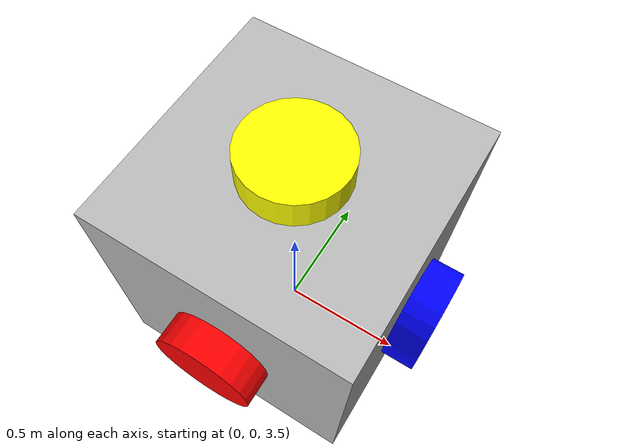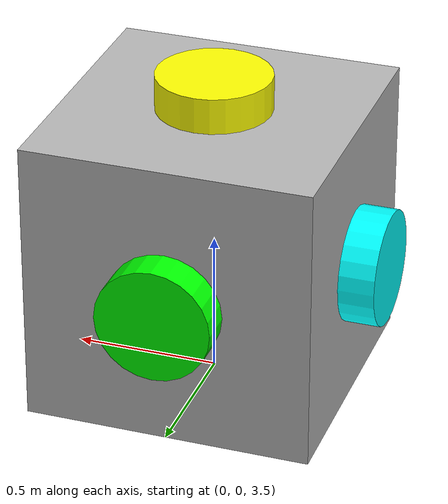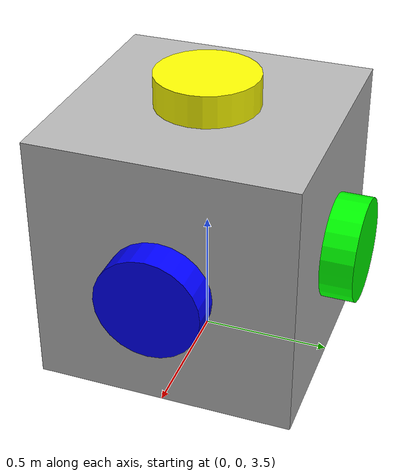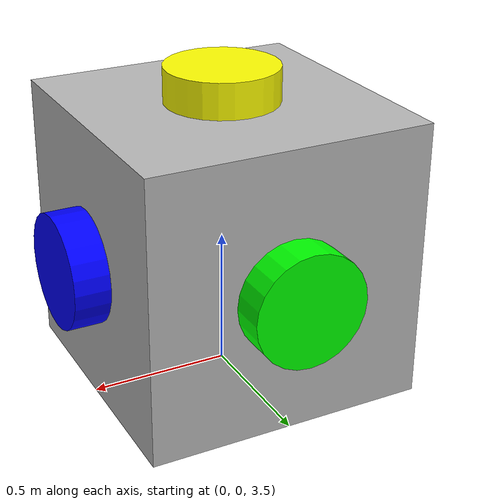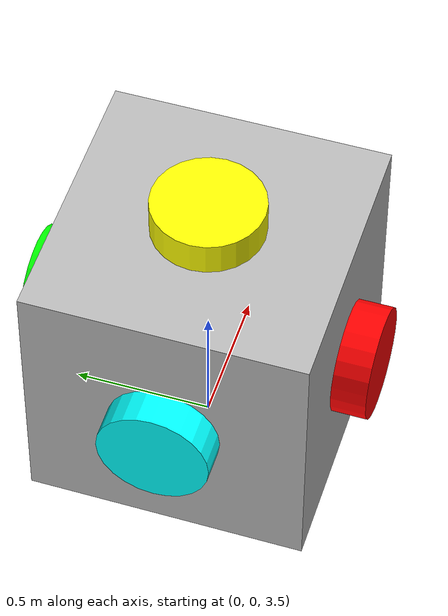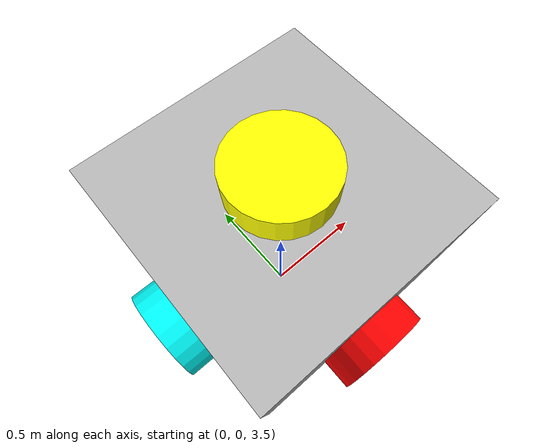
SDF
<sdf version="1.6">
  <world name="zero_g">
    <gravity>0 0 0</gravity>
    <physics name="1ms" type="ignored">
      <max_step_size>0.001</max_step_size>
      <real_time_factor>1.0</real_time_factor>
    </physics>
    <plugin
      filename="gz-sim-physics-system"
      name="gz::sim::systems::Physics">
    </plugin>
    <plugin
      filename="gz-sim-scene-broadcaster-system"
      name="gz::sim::systems::SceneBroadcaster">
    </plugin>
    <plugin
      filename="gz-sim-user-commands-system"
      name="gz::sim::systems::UserCommands">
    </plugin>
    <plugin
      filename="gz-sim-sensors-system"
      name="gz::sim::systems::Sensors">
      <render_engine>ogre2</render_engine>
    </plugin>
    <light type="directional" name="sun">
      <cast_shadows>true</cast_shadows>
      <pose>0 0 10 0 0 0</pose>
      <diffuse>0.8 0.8 0.8 1</diffuse>
      <specular>0.2 0.2 0.2 1</specular>
      <attenuation>
        <range>1000</range>
        <constant>0.9</constant>
        <linear>0.01</linear>
        <quadratic>0.001</quadratic>
      </attenuation>
      <direction>-0.5 0.1 -0.9</direction>
    </light>
  <include>
      <uri>../models/base1</uri>
      <pose>0 0 4 0 0 0</pose>
  </include>
  </world>
</sdf>

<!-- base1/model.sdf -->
<sdf version='1.9'>
<!--This has six thrusters and no gravity-->
  <model name='base'>
    <link name='base_link'>
      <gravity>false</gravity>
      <inertial>
        <pose>0 0 0 0 0 0</pose>
        <mass>60</mass>
        <inertia>
          <ixx>100</ixx>
          <ixy>0</ixy>
          <ixz>0</ixz>
          <iyy>100</iyy>
          <iyz>0</iyz>
          <izz>100</izz>
        </inertia>
      </inertial>
      <collision name='base_link_collision'>
        <pose>0 0 0 0 0 0</pose>
        <geometry>
          <box>
            <size>1 1 1</size>
          </box>
        </geometry>
        <surface>
          <contact>
            <ode>
              <kp>100000</kp>
              <kd>100000</kd>
            </ode>
          </contact>
          <friction>
            <ode>
              <mu>0</mu>
              <mu2>0</mu2>
              <fdir1>0 0 1</fdir1>
            </ode>
          </friction>
        </surface>
      </collision>
      <visual name='base_link_visual'>
        <pose>0 0 0 0 0 0</pose>
        <geometry>
            <box>
                <size>1 1 1</size>
            </box>
        </geometry>
      </visual>
    </link>

    <!-- 0 : Move Left -->
    <joint name='thruster_0_joint' type='fixed'>
      <pose relative_to='base_link'>0 -0.5 0 -1.5708 0 0</pose>
      <parent>base_link</parent>
      <child>thruster_0</child>
      <axis>
        <dynamics>
          <spring_reference>0</spring_reference>
          <spring_stiffness>0</spring_stiffness>
        </dynamics>
        <xyz>0 0 1</xyz>
        <limit>
          <lower>-1e+16</lower>
          <upper>1e+16</upper>
        </limit>
      </axis>
      <physics>
        <ode>
          <limit>
            <cfm>0</cfm>
            <erp>0.2</erp>
          </limit>
        </ode>
      </physics>
    </joint>
    <link name='thruster_0'>
      <gravity>false</gravity>
      <pose relative_to='thruster_0_joint'>0 0 0 0 -0 0</pose>
      <inertial>
        <pose>0 0 0 0 0 0</pose>
        <mass>0.001</mass>
        <inertia>
          <ixx>1e-05</ixx>
          <ixy>0</ixy>
          <ixz>0</ixz>
          <iyy>1e-05</iyy>
          <iyz>0</iyz>
          <izz>1e-05</izz>
        </inertia>
      </inertial>
      <visual name="thruster_0_visual">
        <pose> 0 0 0 0 0 0 </pose>
        <geometry>
            <cylinder>
                <length>0.25</length>
                <radius>0.2</radius>
            </cylinder>
        </geometry>
        <material>
            <ambient>0.1 0.1 0.1 1</ambient>
            <diffuse>1 0 0 1</diffuse>
            <specular>0 0 0 0</specular>
            <emissive>0 0 0 1</emissive>
        </material>
      </visual>
    </link>
    <plugin filename="gz-sim-spacecraft-thruster-model-system" name="gz::sim::systems::SpacecraftThrusterModel">
      <link_name>thruster_0</link_name>
      <actuator_number>0</actuator_number>
      <duty_cycle_frequency>10</duty_cycle_frequency>
      <max_thrust>1.4</max_thrust>
      <sub_topic>command/duty_cycle</sub_topic>
    </plugin>

    <!--1: Move Right -->
    <joint name='thruster_1_joint' type='fixed'>
      <pose relative_to='base_link'>0 0.5 0 1.5708 0 0</pose>
      <parent>base_link</parent>
      <child>thruster_1</child>
      <axis>
        <dynamics>
          <spring_reference>0</spring_reference>
          <spring_stiffness>0</spring_stiffness>
        </dynamics>
        <xyz>0 0 1</xyz>
        <limit>
          <lower>-1e+16</lower>
          <upper>1e+16</upper>
        </limit>
      </axis>
      <physics>
        <ode>
          <limit>
            <cfm>0</cfm>
            <erp>0.2</erp>
          </limit>
        </ode>
      </physics>
    </joint>
    <link name='thruster_1'>
      <gravity>false</gravity>
      <pose relative_to='thruster_1_joint'>0 0 0 0 -0 0</pose>
      <inertial>
        <pose>0 0 0 0 0 0</pose>
        <mass>0.001</mass>
        <inertia>
          <ixx>1e-05</ixx>
          <ixy>0</ixy>
          <ixz>0</ixz>
          <iyy>1e-05</iyy>
          <iyz>0</iyz>
          <izz>1e-05</izz>
        </inertia>
      </inertial>
      <visual name="thruster_1_visual">
        <pose> 0 0 0 0 0 0 </pose>
        <geometry>
            <cylinder>
                <length>0.25</length>
                <radius>0.2</radius>
            </cylinder>
        </geometry>
        <material>
            <ambient>0.1 0.1 0.1 1</ambient>
            <diffuse>0 1 0 1</diffuse>
            <specular>0 0 0 0</specular>
            <emissive>0 0 0 1</emissive>
        </material>
      </visual>
    </link>
    <plugin filename="gz-sim-spacecraft-thruster-model-system" name="gz::sim::systems::SpacecraftThrusterModel">
      <link_name>thruster_1</link_name>
      <actuator_number>1</actuator_number>
      <duty_cycle_frequency>10</duty_cycle_frequency>
      <max_thrust>1.4</max_thrust>
      <sub_topic>command/duty_cycle</sub_topic>
    </plugin>

    <!--2: Move Forward -->
    <joint name='thruster_2_joint' type='fixed'>
      <pose relative_to='base_link'>0.5 0 0 0 -1.5708 0</pose>
      <parent>base_link</parent>
      <child>thruster_2</child>
      <axis>
        <dynamics>
          <spring_reference>0</spring_reference>
          <spring_stiffness>0</spring_stiffness>
        </dynamics>
        <xyz>0 0 1</xyz>
        <limit>
          <lower>-1e+16</lower>
          <upper>1e+16</upper>
        </limit>
      </axis>
      <physics>
        <ode>
          <limit>
            <cfm>0</cfm>
            <erp>0.2</erp>
          </limit>
        </ode>
      </physics>
    </joint>
    <link name='thruster_2'>
      <gravity>false</gravity>
      <pose relative_to='thruster_2_joint'>0 0 0 0 -0 0</pose>
      <inertial>
        <pose>0 0 0 0 0 0</pose>
        <mass>0.001</mass>
        <inertia>
          <ixx>1e-05</ixx>
          <ixy>0</ixy>
          <ixz>0</ixz>
          <iyy>1e-05</iyy>
          <iyz>0</iyz>
          <izz>1e-05</izz>
        </inertia>
      </inertial>
      <visual name="thruster_2_visual">
        <pose> 0 0 0 0 0 0 </pose>
        <geometry>
            <cylinder>
                <length>0.25</length>
                <radius>0.2</radius>
            </cylinder>
        </geometry>
        <material>
            <ambient>0.1 0.1 0.1 1</ambient>
            <diffuse>0 0 1 1</diffuse>
            <specular>0 0 0 0</specular>
            <emissive>0 0 0 1</emissive>
        </material>
      </visual>
    </link>
    <plugin filename="gz-sim-spacecraft-thruster-model-system" name="gz::sim::systems::SpacecraftThrusterModel">
      <link_name>thruster_2</link_name>
      <actuator_number>2</actuator_number>
      <duty_cycle_frequency>10</duty_cycle_frequency>
      <max_thrust>1.4</max_thrust>
      <sub_topic>command/duty_cycle</sub_topic>
    </plugin>

    <!--3. Move Backward-->
    <joint name='thruster_3_joint' type='fixed'>
      <pose relative_to='base_link'>-0.5 0 0 0 1.5708 0</pose>
      <parent>base_link</parent>
      <child>thruster_3</child>
      <axis>
        <dynamics>
          <spring_reference>0</spring_reference>
          <spring_stiffness>0</spring_stiffness>
        </dynamics>
        <xyz>0 0 1</xyz>
        <limit>
          <lower>-1e+16</lower>
          <upper>1e+16</upper>
        </limit>
      </axis>
      <physics>
        <ode>
          <limit>
            <cfm>0</cfm>
            <erp>0.2</erp>
          </limit>
        </ode>
      </physics>
    </joint>
    <link name='thruster_3'>
      <gravity>false</gravity>
      <pose relative_to='thruster_3_joint'>0 0 0 0 -0 0</pose>
      <inertial>
        <pose>0 0 0 0 0 0</pose>
        <mass>0.001</mass>
        <inertia>
          <ixx>1e-05</ixx>
          <ixy>0</ixy>
          <ixz>0</ixz>
          <iyy>1e-05</iyy>
          <iyz>0</iyz>
          <izz>1e-05</izz>
        </inertia>
      </inertial>
      <visual name="thruster_3_visual">
        <pose> 0 0 0 0 0 0 </pose>
        <geometry>
            <cylinder>
                <length>0.25</length>
                <radius>0.2</radius>
            </cylinder>
        </geometry>
        <material>
            <ambient>0.1 0.1 0.1 1</ambient>
            <diffuse>0 1 1 1</diffuse>
            <specular>0 0 0 0</specular>
            <emissive>0 0 0 1</emissive>
        </material>
      </visual>
    </link>
    <plugin filename="gz-sim-spacecraft-thruster-model-system" name="gz::sim::systems::SpacecraftThrusterModel">
      <link_name>thruster_3</link_name>
      <actuator_number>3</actuator_number>
      <duty_cycle_frequency>10</duty_cycle_frequency>
      <max_thrust>1.4</max_thrust>
      <sub_topic>command/duty_cycle</sub_topic>
    </plugin>

    <!--4. Move Up-->
    <joint name='thruster_4_joint' type='fixed'>
      <pose relative_to='base_link'>0 0 -0.5 0 0 1.5708 </pose>
      <parent>base_link</parent>
      <child>thruster_4</child>
      <axis>
        <dynamics>
          <spring_reference>0</spring_reference>
          <spring_stiffness>0</spring_stiffness>
        </dynamics>
        <xyz>0 0 1</xyz>
        <limit>
          <lower>-1e+16</lower>
          <upper>1e+16</upper>
        </limit>
      </axis>
      <physics>
        <ode>
          <limit>
            <cfm>0</cfm>
            <erp>0.2</erp>
          </limit>
        </ode>
      </physics>
    </joint>
    <link name='thruster_4'>
      <gravity>false</gravity>
      <pose relative_to='thruster_4_joint'>0 0 0 0 -0 0</pose>
      <inertial>
        <pose>0 0 0 0 0 0</pose>
        <mass>0.001</mass>
        <inertia>
          <ixx>1e-05</ixx>
          <ixy>0</ixy>
          <ixz>0</ixz>
          <iyy>1e-05</iyy>
          <iyz>0</iyz>
          <izz>1e-05</izz>
        </inertia>
      </inertial>
      <visual name="thruster_4_visual">
        <pose> 0 0 0 0 0 0 </pose>
        <geometry>
            <cylinder>
                <length>0.25</length>
                <radius>0.2</radius>
            </cylinder>
        </geometry>
        <material>
            <ambient>0.1 0.1 0.1 1</ambient>
            <diffuse>1 0 1 1</diffuse>
            <specular>0 0 0 0</specular>
            <emissive>0 0 0 1</emissive>
        </material>
      </visual>
    </link>
    <plugin filename="gz-sim-spacecraft-thruster-model-system" name="gz::sim::systems::SpacecraftThrusterModel">
      <link_name>thruster_4</link_name>
      <actuator_number>4</actuator_number>
      <duty_cycle_frequency>10</duty_cycle_frequency>
      <max_thrust>1.4</max_thrust>
      <sub_topic>command/duty_cycle</sub_topic>
    </plugin>

    <!--5. Move Down-->
    <joint name='thruster_5_joint' type='fixed'>
      <pose relative_to='base_link'>0 0 0.5 0 0 -1.5708 </pose>
      <parent>base_link</parent>
      <child>thruster_5</child>
      <axis>
        <dynamics>
          <spring_reference>0</spring_reference>
          <spring_stiffness>0</spring_stiffness>
        </dynamics>
        <xyz>0 0 1</xyz>
        <limit>
          <lower>-1e+16</lower>
          <upper>1e+16</upper>
        </limit>
      </axis>
      <physics>
        <ode>
          <limit>
            <cfm>0</cfm>
            <erp>0.2</erp>
          </limit>
        </ode>
      </physics>
    </joint>
    <link name='thruster_5'>
      <gravity>false</gravity>
      <pose relative_to='thruster_5_joint'>0 0 0 0 0 0</pose>
      <inertial>
        <pose>0 0 0 0 0 0</pose>
        <mass>0.001</mass>
        <inertia>
          <ixx>1e-05</ixx>
          <ixy>0</ixy>
          <ixz>0</ixz>
          <iyy>1e-05</iyy>
          <iyz>0</iyz>
          <izz>1e-05</izz>
        </inertia>
      </inertial>
      <visual name="thruster_5_visual">
        <pose> 0 0 0 0 0 0 </pose>
        <geometry>
            <cylinder>
                <length>0.25</length>
                <radius>0.2</radius>
            </cylinder>
        </geometry>
        <material>
            <ambient>0.1 0.1 0.1 1</ambient>
            <diffuse>1 1 0 1</diffuse>
            <specular>0 0 0 0</specular>
            <emissive>0 0 0 1</emissive>
        </material>
      </visual>
    </link>
    <plugin filename="gz-sim-spacecraft-thruster-model-system" name="gz::sim::systems::SpacecraftThrusterModel">
      <link_name>thruster_5</link_name>
      <actuator_number>5</actuator_number>
      <duty_cycle_frequency>10</duty_cycle_frequency>
      <max_thrust>1.4</max_thrust>
      <sub_topic>command/duty_cycle</sub_topic>
    </plugin>
</model>
</sdf>
